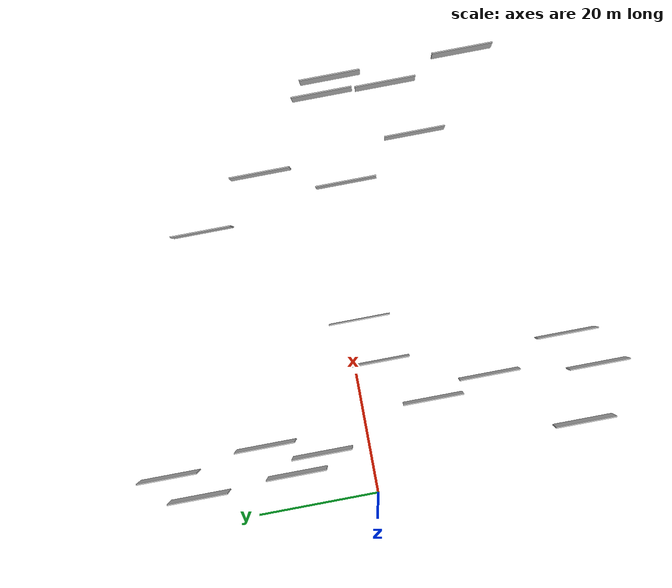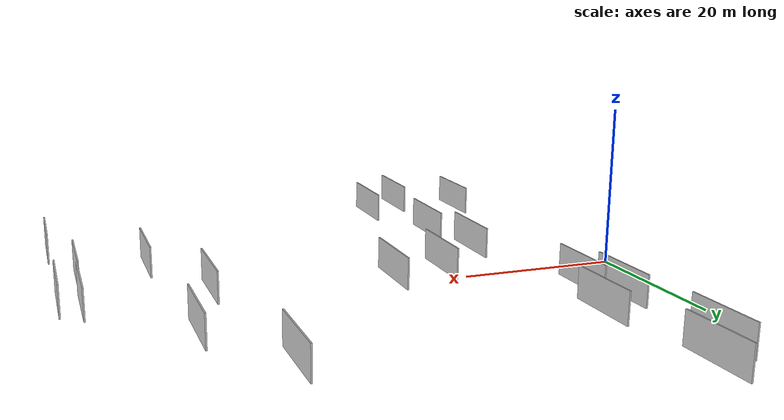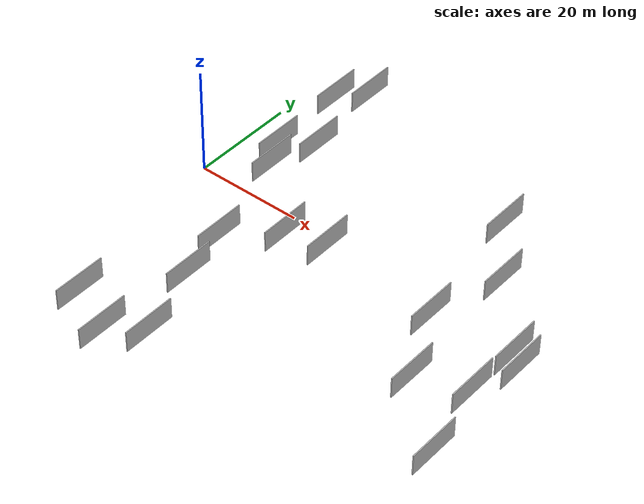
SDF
<sdf version="1.6">
 <world name="default">
  <scene>
   <sky><clouds><speed>12</speed></clouds></sky>
   <ambient>0.4 0.4 0.4 1</ambient>
   <background>0.7 0.7 0.7 1</background>
   <shadows>1</shadows>
  </scene>
  <gravity>0 0 -9.8066</gravity>
  <magnetic_field>6e-06 2.3e-05 -4.2e-05</magnetic_field>
  <physics default="0" name="default_physics" type="ode">
   <ode>
    <solver>
     <type>quick</type>
     <iters>10</iters>
     <sor>1.0</sor>
     <use_dynamic_moi_rescaling>0</use_dynamic_moi_rescaling>
    </solver>
    <constraints>
     <cfm>0</cfm>
     <erp>0.2</erp>
     <contact_max_correcting_vel>100</contact_max_correcting_vel>
     <contact_surface_layer>0.001</contact_surface_layer>
    </constraints>
   </ode>
   <max_step_size>0.004</max_step_size>
   <real_time_factor>1</real_time_factor>
   <real_time_update_rate>250</real_time_update_rate>
  </physics>
  <light name="sun" type="directional">
   <pose>0 0 10 0 0 0</pose>
   <diffuse>0.8 0.8 0.8 1</diffuse>
   <specular>0.2 0.2 0.2 1</specular>
   <attenuation>
    <range>1000</range>
    <constant>0.9</constant>
    <linear>0.01</linear>
    <quadratic>0.001</quadratic>
   </attenuation>
   <direction>-0.5 0.1 -0.9</direction>
  </light>
  <model name="grey_wall_1">
   <static>1</static>
   <pose>47.6963 20.3924 0.0 0.000000 0.000000 1.570796</pose>
   <link name="link">
    <pose>0 0 2.00 0 0 0</pose>
    <collision name="collision"><geometry><box><size>10.00 0.2 4.00</size></box></geometry></collision>
    <visual name="visual">
     <cast_shadows>0</cast_shadows>
     <geometry><box><size>10.00 0.2 4.00</size></box></geometry>
     <material>
      <script>
       <uri>model://HANNAS_wall/materials/scripts</uri>
       <uri>model://HANNAS_wall/materials/textures</uri>
       <name>vrc/HANNAS_wall</name>
      </script>
     </material>
    </visual>
   </link>
  </model>
  <model name="grey_wall_2">
   <static>1</static>
   <pose>55.3431 9.2671 0.0 0.000000 0.000000 1.570796</pose>
   <link name="link">
    <pose>0 0 2.00 0 0 0</pose>
    <collision name="collision"><geometry><box><size>10.00 0.2 4.00</size></box></geometry></collision>
    <visual name="visual">
     <cast_shadows>0</cast_shadows>
     <geometry><box><size>10.00 0.2 4.00</size></box></geometry>
     <material>
      <script>
       <uri>model://HANNAS_wall/materials/scripts</uri>
       <uri>model://HANNAS_wall/materials/textures</uri>
       <name>vrc/HANNAS_wall</name>
      </script>
     </material>
    </visual>
   </link>
  </model>
  <model name="grey_wall_3">
   <static>1</static>
   <pose>57.2639 -16.7933 0.0 0.000000 0.000000 1.570796</pose>
   <link name="link">
    <pose>0 0 2.00 0 0 0</pose>
    <collision name="collision"><geometry><box><size>10.00 0.2 4.00</size></box></geometry></collision>
    <visual name="visual">
     <cast_shadows>0</cast_shadows>
     <geometry><box><size>10.00 0.2 4.00</size></box></geometry>
     <material>
      <script>
       <uri>model://HANNAS_wall/materials/scripts</uri>
       <uri>model://HANNAS_wall/materials/textures</uri>
       <name>vrc/HANNAS_wall</name>
      </script>
     </material>
    </visual>
   </link>
  </model>
  <model name="grey_wall_4">
   <static>1</static>
   <pose>20.4335 -35.1803 0.0 0.000000 0.000000 1.570796</pose>
   <link name="link">
    <pose>0 0 2.00 0 0 0</pose>
    <collision name="collision"><geometry><box><size>10.00 0.2 4.00</size></box></geometry></collision>
    <visual name="visual">
     <cast_shadows>0</cast_shadows>
     <geometry><box><size>10.00 0.2 4.00</size></box></geometry>
     <material>
      <script>
       <uri>model://HANNAS_wall/materials/scripts</uri>
       <uri>model://HANNAS_wall/materials/textures</uri>
       <name>vrc/HANNAS_wall</name>
      </script>
     </material>
    </visual>
   </link>
  </model>
  <model name="grey_wall_5">
   <static>1</static>
   <pose>51.3692 -4.3155 0.0 0.000000 0.000000 1.570796</pose>
   <link name="link">
    <pose>0 0 2.00 0 0 0</pose>
    <collision name="collision"><geometry><box><size>10.00 0.2 4.00</size></box></geometry></collision>
    <visual name="visual">
     <cast_shadows>0</cast_shadows>
     <geometry><box><size>10.00 0.2 4.00</size></box></geometry>
     <material>
      <script>
       <uri>model://HANNAS_wall/materials/scripts</uri>
       <uri>model://HANNAS_wall/materials/textures</uri>
       <name>vrc/HANNAS_wall</name>
      </script>
     </material>
    </visual>
   </link>
  </model>
  <model name="grey_wall_6">
   <static>1</static>
   <pose>11.2999 16.6814 0.0 0.000000 0.000000 1.570796</pose>
   <link name="link">
    <pose>0 0 2.00 0 0 0</pose>
    <collision name="collision"><geometry><box><size>10.00 0.2 4.00</size></box></geometry></collision>
    <visual name="visual">
     <cast_shadows>0</cast_shadows>
     <geometry><box><size>10.00 0.2 4.00</size></box></geometry>
     <material>
      <script>
       <uri>model://HANNAS_wall/materials/scripts</uri>
       <uri>model://HANNAS_wall/materials/textures</uri>
       <name>vrc/HANNAS_wall</name>
      </script>
     </material>
    </visual>
   </link>
  </model>
  <model name="grey_wall_7">
   <static>1</static>
   <pose>68.7887 -4.8662 0.0 0.000000 0.000000 1.570796</pose>
   <link name="link">
    <pose>0 0 2.00 0 0 0</pose>
    <collision name="collision"><geometry><box><size>10.00 0.2 4.00</size></box></geometry></collision>
    <visual name="visual">
     <cast_shadows>0</cast_shadows>
     <geometry><box><size>10.00 0.2 4.00</size></box></geometry>
     <material>
      <script>
       <uri>model://HANNAS_wall/materials/scripts</uri>
       <uri>model://HANNAS_wall/materials/textures</uri>
       <name>vrc/HANNAS_wall</name>
      </script>
     </material>
    </visual>
   </link>
  </model>
  <model name="grey_wall_8">
   <static>1</static>
   <pose>14.5026 -39.3632 0.0 0.000000 0.000000 1.570796</pose>
   <link name="link">
    <pose>0 0 2.00 0 0 0</pose>
    <collision name="collision"><geometry><box><size>10.00 0.2 4.00</size></box></geometry></collision>
    <visual name="visual">
     <cast_shadows>0</cast_shadows>
     <geometry><box><size>10.00 0.2 4.00</size></box></geometry>
     <material>
      <script>
       <uri>model://HANNAS_wall/materials/scripts</uri>
       <uri>model://HANNAS_wall/materials/textures</uri>
       <name>vrc/HANNAS_wall</name>
      </script>
     </material>
    </visual>
   </link>
  </model>
  <model name="grey_wall_9">
   <static>1</static>
   <pose>21.5722 -4.2245 0.0 0.000000 0.000000 1.570796</pose>
   <link name="link">
    <pose>0 0 2.00 0 0 0</pose>
    <collision name="collision"><geometry><box><size>10.00 0.2 4.00</size></box></geometry></collision>
    <visual name="visual">
     <cast_shadows>0</cast_shadows>
     <geometry><box><size>10.00 0.2 4.00</size></box></geometry>
     <material>
      <script>
       <uri>model://HANNAS_wall/materials/scripts</uri>
       <uri>model://HANNAS_wall/materials/textures</uri>
       <name>vrc/HANNAS_wall</name>
      </script>
     </material>
    </visual>
   </link>
  </model>
  <model name="grey_wall_10">
   <static>1</static>
   <pose>5.7013 -35.4349 0.0 0.000000 0.000000 1.570796</pose>
   <link name="link">
    <pose>0 0 2.00 0 0 0</pose>
    <collision name="collision"><geometry><box><size>10.00 0.2 4.00</size></box></geometry></collision>
    <visual name="visual">
     <cast_shadows>0</cast_shadows>
     <geometry><box><size>10.00 0.2 4.00</size></box></geometry>
     <material>
      <script>
       <uri>model://HANNAS_wall/materials/scripts</uri>
       <uri>model://HANNAS_wall/materials/textures</uri>
       <name>vrc/HANNAS_wall</name>
      </script>
     </material>
    </visual>
   </link>
  </model>
  <model name="grey_wall_11">
   <static>1</static>
   <pose>5.9404 12.4296 0.0 0.000000 0.000000 1.570796</pose>
   <link name="link">
    <pose>0 0 2.00 0 0 0</pose>
    <collision name="collision"><geometry><box><size>10.00 0.2 4.00</size></box></geometry></collision>
    <visual name="visual">
     <cast_shadows>0</cast_shadows>
     <geometry><box><size>10.00 0.2 4.00</size></box></geometry>
     <material>
      <script>
       <uri>model://HANNAS_wall/materials/scripts</uri>
       <uri>model://HANNAS_wall/materials/textures</uri>
       <name>vrc/HANNAS_wall</name>
      </script>
     </material>
    </visual>
   </link>
  </model>
  <model name="grey_wall_12">
   <static>1</static>
   <pose>5.1068 28.8986 0.0 0.000000 0.000000 1.570796</pose>
   <link name="link">
    <pose>0 0 2.00 0 0 0</pose>
    <collision name="collision"><geometry><box><size>10.00 0.2 4.00</size></box></geometry></collision>
    <visual name="visual">
     <cast_shadows>0</cast_shadows>
     <geometry><box><size>10.00 0.2 4.00</size></box></geometry>
     <material>
      <script>
       <uri>model://HANNAS_wall/materials/scripts</uri>
       <uri>model://HANNAS_wall/materials/textures</uri>
       <name>vrc/HANNAS_wall</name>
      </script>
     </material>
    </visual>
   </link>
  </model>
  <model name="grey_wall_13">
   <static>1</static>
   <pose>16.1383 -21.5206 0.0 0.000000 0.000000 1.570796</pose>
   <link name="link">
    <pose>0 0 2.00 0 0 0</pose>
    <collision name="collision"><geometry><box><size>10.00 0.2 4.00</size></box></geometry></collision>
    <visual name="visual">
     <cast_shadows>0</cast_shadows>
     <geometry><box><size>10.00 0.2 4.00</size></box></geometry>
     <material>
      <script>
       <uri>model://HANNAS_wall/materials/scripts</uri>
       <uri>model://HANNAS_wall/materials/textures</uri>
       <name>vrc/HANNAS_wall</name>
      </script>
     </material>
    </visual>
   </link>
  </model>
  <model name="grey_wall_14">
   <static>1</static>
   <pose>9.2758 33.2405 0.0 0.000000 0.000000 1.570796</pose>
   <link name="link">
    <pose>0 0 2.00 0 0 0</pose>
    <collision name="collision"><geometry><box><size>10.00 0.2 4.00</size></box></geometry></collision>
    <visual name="visual">
     <cast_shadows>0</cast_shadows>
     <geometry><box><size>10.00 0.2 4.00</size></box></geometry>
     <material>
      <script>
       <uri>model://HANNAS_wall/materials/scripts</uri>
       <uri>model://HANNAS_wall/materials/textures</uri>
       <name>vrc/HANNAS_wall</name>
      </script>
     </material>
    </visual>
   </link>
  </model>
  <model name="grey_wall_15">
   <static>1</static>
   <pose>13.9112 -11.7241 0.0 0.000000 0.000000 1.570796</pose>
   <link name="link">
    <pose>0 0 2.00 0 0 0</pose>
    <collision name="collision"><geometry><box><size>10.00 0.2 4.00</size></box></geometry></collision>
    <visual name="visual">
     <cast_shadows>0</cast_shadows>
     <geometry><box><size>10.00 0.2 4.00</size></box></geometry>
     <material>
      <script>
       <uri>model://HANNAS_wall/materials/scripts</uri>
       <uri>model://HANNAS_wall/materials/textures</uri>
       <name>vrc/HANNAS_wall</name>
      </script>
     </material>
    </visual>
   </link>
  </model>
  <model name="grey_wall_16">
   <static>1</static>
   <pose>8.4554 7.7266 0.0 0.000000 0.000000 1.570796</pose>
   <link name="link">
    <pose>0 0 2.00 0 0 0</pose>
    <collision name="collision"><geometry><box><size>10.00 0.2 4.00</size></box></geometry></collision>
    <visual name="visual">
     <cast_shadows>0</cast_shadows>
     <geometry><box><size>10.00 0.2 4.00</size></box></geometry>
     <material>
      <script>
       <uri>model://HANNAS_wall/materials/scripts</uri>
       <uri>model://HANNAS_wall/materials/textures</uri>
       <name>vrc/HANNAS_wall</name>
      </script>
     </material>
    </visual>
   </link>
  </model>
  <model name="grey_wall_17">
   <static>1</static>
   <pose>28.8826 -2.3091 0.0 0.000000 0.000000 1.570796</pose>
   <link name="link">
    <pose>0 0 2.00 0 0 0</pose>
    <collision name="collision"><geometry><box><size>10.00 0.2 4.00</size></box></geometry></collision>
    <visual name="visual">
     <cast_shadows>0</cast_shadows>
     <geometry><box><size>10.00 0.2 4.00</size></box></geometry>
     <material>
      <script>
       <uri>model://HANNAS_wall/materials/scripts</uri>
       <uri>model://HANNAS_wall/materials/textures</uri>
       <name>vrc/HANNAS_wall</name>
      </script>
     </material>
    </visual>
   </link>
  </model>
  <model name="grey_wall_18">
   <static>1</static>
   <pose>69.1086 -26.8999 0.0 0.000000 0.000000 1.570796</pose>
   <link name="link">
    <pose>0 0 2.00 0 0 0</pose>
    <collision name="collision"><geometry><box><size>10.00 0.2 4.00</size></box></geometry></collision>
    <visual name="visual">
     <cast_shadows>0</cast_shadows>
     <geometry><box><size>10.00 0.2 4.00</size></box></geometry>
     <material>
      <script>
       <uri>model://HANNAS_wall/materials/scripts</uri>
       <uri>model://HANNAS_wall/materials/textures</uri>
       <name>vrc/HANNAS_wall</name>
      </script>
     </material>
    </visual>
   </link>
  </model>
  <model name="grey_wall_19">
   <static>1</static>
   <pose>66.2980 -3.0359 0.0 0.000000 0.000000 1.570796</pose>
   <link name="link">
    <pose>0 0 2.00 0 0 0</pose>
    <collision name="collision"><geometry><box><size>10.00 0.2 4.00</size></box></geometry></collision>
    <visual name="visual">
     <cast_shadows>0</cast_shadows>
     <geometry><box><size>10.00 0.2 4.00</size></box></geometry>
     <material>
      <script>
       <uri>model://HANNAS_wall/materials/scripts</uri>
       <uri>model://HANNAS_wall/materials/textures</uri>
       <name>vrc/HANNAS_wall</name>
      </script>
     </material>
    </visual>
   </link>
  </model>
  <model name="grey_wall_20">
   <static>1</static>
   <pose>66.1236 -13.5598 0.0 0.000000 0.000000 1.570796</pose>
   <link name="link">
    <pose>0 0 2.00 0 0 0</pose>
    <collision name="collision"><geometry><box><size>10.00 0.2 4.00</size></box></geometry></collision>
    <visual name="visual">
     <cast_shadows>0</cast_shadows>
     <geometry><box><size>10.00 0.2 4.00</size></box></geometry>
     <material>
      <script>
       <uri>model://HANNAS_wall/materials/scripts</uri>
       <uri>model://HANNAS_wall/materials/textures</uri>
       <name>vrc/HANNAS_wall</name>
      </script>
     </material>
    </visual>
   </link>
  </model>
 </world>
</sdf>
